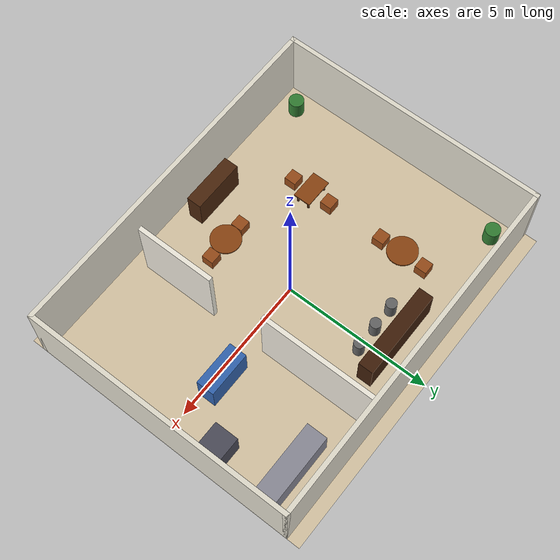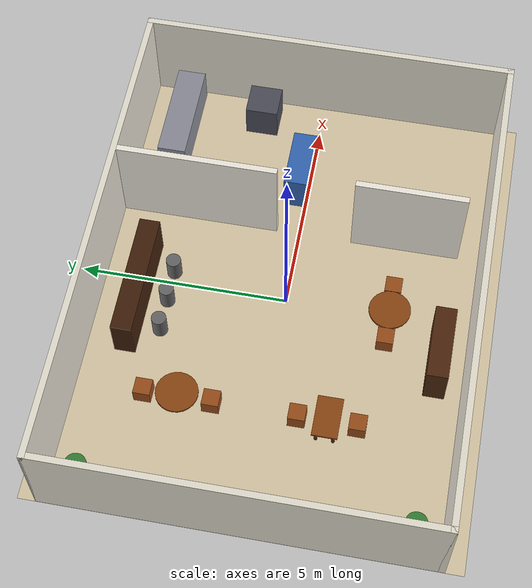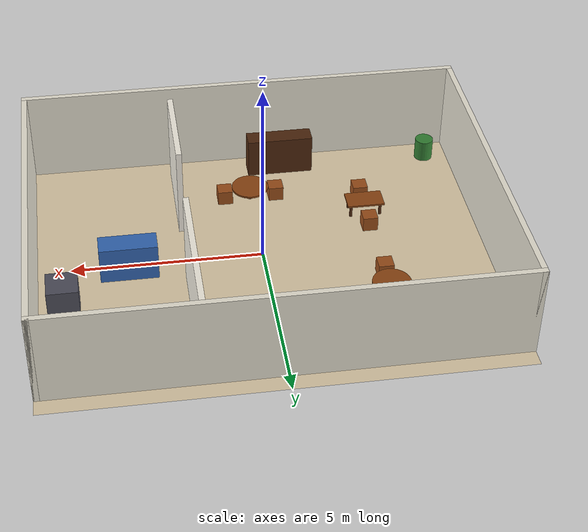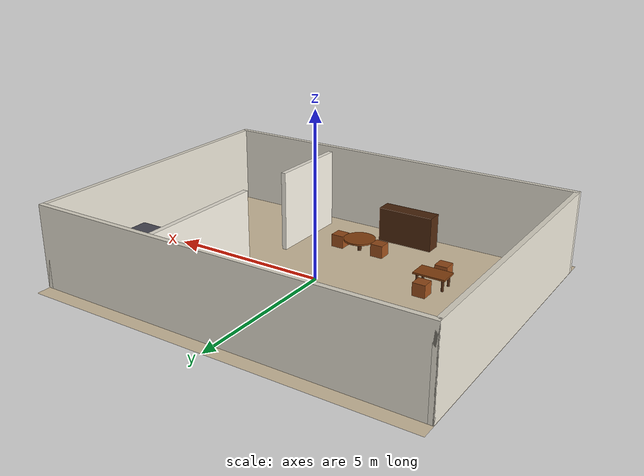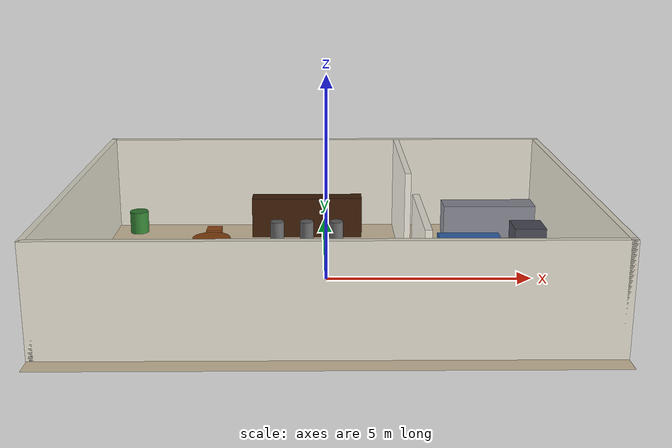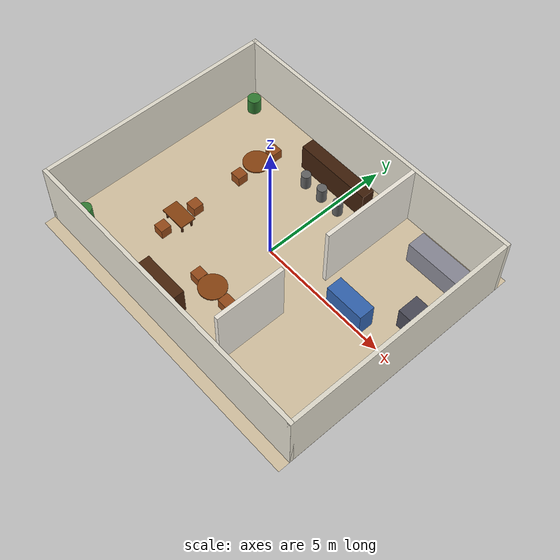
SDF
<?xml version="1.0"?>
<sdf version="1.6">
  <world name="restaurant_world">

    <include>
      <uri>model://ground_plane</uri>
    </include>

    <include>
      <uri>model://sun</uri>
    </include>

    <scene>
      <shadows>false</shadows>
      <ambient>0.6 0.6 0.6 1</ambient>
      <background>0.7 0.8 0.9 1</background>
    </scene>

    <gui fullscreen='0'>
      <camera name='user_camera'>
        <pose frame=''>0.0 0.0 18.0 0 1.5707 0</pose>
        <view_controller>orbit</view_controller>
        <projection_type>perspective</projection_type>
      </camera>
    </gui>

    <physics type="ode">
      <real_time_update_rate>1000.0</real_time_update_rate>
      <max_step_size>0.001</max_step_size>
      <real_time_factor>1</real_time_factor>
      <ode>
        <solver>
          <type>quick</type>
          <iters>150</iters>
          <precon_iters>0</precon_iters>
          <sor>1.4</sor>
          <use_dynamic_moi_rescaling>1</use_dynamic_moi_rescaling>
        </solver>
        <constraints>
          <cfm>0.00001</cfm>
          <erp>0.2</erp>
          <contact_max_correcting_vel>2000.0</contact_max_correcting_vel>
          <contact_surface_layer>0.01</contact_surface_layer>
        </constraints>
      </ode>
    </physics>

    <!-- ==================== FLOOR ==================== -->
    <model name="restaurant_floor">
      <static>true</static>
      <pose>0 0 0.001 0 0 0</pose>
      <link name="link">
        <visual name="visual">
          <geometry>
            <plane><normal>0 0 1</normal><size>12 10</size></plane>
          </geometry>
          <material>
            <ambient>0.85 0.78 0.65 1</ambient>
            <diffuse>0.85 0.78 0.65 1</diffuse>
          </material>
        </visual>
      </link>
    </model>

    <!-- ==================== OUTER WALLS ==================== -->
    <!-- North wall (y=4.5) -->
    <model name="wall_north">
      <static>true</static>
      <pose>0 4.5 0 0 0 0</pose>
      <link name="link">
        <pose>0 0 1.25 0 0 0</pose>
        <collision name="collision">
          <geometry><box><size>12 0.15 2.5</size></box></geometry>
        </collision>
        <visual name="visual">
          <geometry><box><size>12 0.15 2.5</size></box></geometry>
          <material>
            <ambient>0.9 0.88 0.82 1</ambient>
            <diffuse>0.9 0.88 0.82 1</diffuse>
          </material>
        </visual>
      </link>
    </model>

    <!-- South wall (y=-4.5) -->
    <model name="wall_south">
      <static>true</static>
      <pose>0 -4.5 0 0 0 0</pose>
      <link name="link">
        <pose>0 0 1.25 0 0 0</pose>
        <collision name="collision">
          <geometry><box><size>12 0.15 2.5</size></box></geometry>
        </collision>
        <visual name="visual">
          <geometry><box><size>12 0.15 2.5</size></box></geometry>
          <material>
            <ambient>0.9 0.88 0.82 1</ambient>
            <diffuse>0.9 0.88 0.82 1</diffuse>
          </material>
        </visual>
      </link>
    </model>

    <!-- East wall (x=5.925) -->
    <model name="wall_east">
      <static>true</static>
      <pose>5.925 0 0 0 0 0</pose>
      <link name="link">
        <pose>0 0 1.25 0 0 0</pose>
        <collision name="collision">
          <geometry><box><size>0.15 9.15 2.5</size></box></geometry>
        </collision>
        <visual name="visual">
          <geometry><box><size>0.15 9.15 2.5</size></box></geometry>
          <material>
            <ambient>0.9 0.88 0.82 1</ambient>
            <diffuse>0.9 0.88 0.82 1</diffuse>
          </material>
        </visual>
      </link>
    </model>

    <!-- West wall (x=-5.925) -->
    <model name="wall_west">
      <static>true</static>
      <pose>-5.925 0 0 0 0 0</pose>
      <link name="link">
        <pose>0 0 1.25 0 0 0</pose>
        <collision name="collision">
          <geometry><box><size>0.15 9.15 2.5</size></box></geometry>
        </collision>
        <visual name="visual">
          <geometry><box><size>0.15 9.15 2.5</size></box></geometry>
          <material>
            <ambient>0.9 0.88 0.82 1</ambient>
            <diffuse>0.9 0.88 0.82 1</diffuse>
          </material>
        </visual>
      </link>
    </model>

    <!-- ==================== KITCHEN PARTITION WALL ==================== -->
    <!-- Kitchen is in the right side (x > 2.0), separated by a partition wall -->
    <!-- Upper partition (above doorway) -->
    <model name="kitchen_wall_upper">
      <static>true</static>
      <pose>2.0 2.5 0 0 0 0</pose>
      <link name="link">
        <pose>0 0 1.25 0 0 0</pose>
        <collision name="collision">
          <geometry><box><size>0.15 3.85 2.5</size></box></geometry>
        </collision>
        <visual name="visual">
          <geometry><box><size>0.15 3.85 2.5</size></box></geometry>
          <material>
            <ambient>0.95 0.93 0.88 1</ambient>
            <diffuse>0.95 0.93 0.88 1</diffuse>
          </material>
        </visual>
      </link>
    </model>

    <!-- Lower partition (below doorway) — doorway at y = -0.3 to y = 0.8 -->
    <model name="kitchen_wall_lower">
      <static>true</static>
      <pose>2.0 -2.6 0 0 0 0</pose>
      <link name="link">
        <pose>0 0 1.25 0 0 0</pose>
        <collision name="collision">
          <geometry><box><size>0.15 2.65 2.5</size></box></geometry>
        </collision>
        <visual name="visual">
          <geometry><box><size>0.15 2.65 2.5</size></box></geometry>
          <material>
            <ambient>0.95 0.93 0.88 1</ambient>
            <diffuse>0.95 0.93 0.88 1</diffuse>
          </material>
        </visual>
      </link>
    </model>

    <!-- ==================== KITCHEN AREA (right side x=2..6) ==================== -->
    <!-- Kitchen counter (along back wall) -->
    <model name="kitchen_counter">
      <static>true</static>
      <pose>4.5 3.5 0 0 0 0</pose>
      <link name="link">
        <pose>0 0 0.45 0 0 0</pose>
        <collision name="collision">
          <geometry><box><size>2.5 0.7 0.9</size></box></geometry>
        </collision>
        <visual name="visual">
          <geometry><box><size>2.5 0.7 0.9</size></box></geometry>
          <material>
            <ambient>0.55 0.55 0.6 1</ambient>
            <diffuse>0.55 0.55 0.6 1</diffuse>
          </material>
        </visual>
      </link>
    </model>

    <!-- Kitchen stove -->
    <model name="kitchen_stove">
      <static>true</static>
      <pose>5.2 1.5 0 0 0 0</pose>
      <link name="link">
        <pose>0 0 0.45 0 0 0</pose>
        <collision name="collision">
          <geometry><box><size>0.8 0.8 0.9</size></box></geometry>
        </collision>
        <visual name="visual">
          <geometry><box><size>0.8 0.8 0.9</size></box></geometry>
          <material>
            <ambient>0.3 0.3 0.35 1</ambient>
            <diffuse>0.3 0.3 0.35 1</diffuse>
          </material>
        </visual>
      </link>
    </model>

    <!-- Kitchen food pickup counter (near partition doorway) -->
    <model name="kitchen_pickup">
      <static>true</static>
      <pose>3.5 0.25 0 0 0 0</pose>
      <link name="link">
        <pose>0 0 0.5 0 0 0</pose>
        <collision name="collision">
          <geometry><box><size>1.5 0.6 1.0</size></box></geometry>
        </collision>
        <visual name="visual">
          <geometry><box><size>1.5 0.6 1.0</size></box></geometry>
          <material>
            <ambient>0.2 0.4 0.7 1</ambient>
            <diffuse>0.2 0.4 0.7 1</diffuse>
          </material>
        </visual>
      </link>
    </model>

    <!-- ==================== DINING TABLE 1 (front-left) ==================== -->
    <model name="table_1">
      <static>true</static>
      <pose>-3.0 2.0 0 0 0 0</pose>
      <link name="table_top">
        <pose>0 0 0.375 0 0 0</pose>
        <collision name="collision">
          <geometry><cylinder><radius>0.5</radius><length>0.05</length></cylinder></geometry>
        </collision>
        <visual name="visual">
          <geometry><cylinder><radius>0.5</radius><length>0.05</length></cylinder></geometry>
          <material><ambient>0.55 0.27 0.07 1</ambient><diffuse>0.55 0.27 0.07 1</diffuse></material>
        </visual>
      </link>
      <link name="table_leg">
        <pose>0 0 0.175 0 0 0</pose>
        <collision name="collision">
          <geometry><cylinder><radius>0.06</radius><length>0.35</length></cylinder></geometry>
        </collision>
        <visual name="visual">
          <geometry><cylinder><radius>0.06</radius><length>0.35</length></cylinder></geometry>
          <material><ambient>0.3 0.15 0.05 1</ambient><diffuse>0.3 0.15 0.05 1</diffuse></material>
        </visual>
      </link>
    </model>
    <model name="chair_1a">
      <static>true</static>
      <pose>-3.0 2.8 0 0 0 0</pose>
      <link name="link"><pose>0 0 0.2 0 0 0</pose>
        <collision name="c"><geometry><box><size>0.4 0.4 0.4</size></box></geometry></collision>
        <visual name="v"><geometry><box><size>0.4 0.4 0.4</size></box></geometry>
          <material><ambient>0.6 0.3 0.1 1</ambient><diffuse>0.6 0.3 0.1 1</diffuse></material></visual>
      </link>
    </model>
    <model name="chair_1b">
      <static>true</static>
      <pose>-3.0 1.2 0 0 0 0</pose>
      <link name="link"><pose>0 0 0.2 0 0 0</pose>
        <collision name="c"><geometry><box><size>0.4 0.4 0.4</size></box></geometry></collision>
        <visual name="v"><geometry><box><size>0.4 0.4 0.4</size></box></geometry>
          <material><ambient>0.6 0.3 0.1 1</ambient><diffuse>0.6 0.3 0.1 1</diffuse></material></visual>
      </link>
    </model>

    <!-- ==================== DINING TABLE 2 (left-center) ==================== -->
    <model name="table_2">
      <static>true</static>
      <pose>-3.0 -1.5 0 0 0 0</pose>
      <link name="table_top">
        <pose>0 0 0.375 0 0 0</pose>
        <collision name="collision">
          <geometry><box><size>1.0 0.6 0.05</size></box></geometry>
        </collision>
        <visual name="visual">
          <geometry><box><size>1.0 0.6 0.05</size></box></geometry>
          <material><ambient>0.55 0.27 0.07 1</ambient><diffuse>0.55 0.27 0.07 1</diffuse></material>
        </visual>
      </link>
      <link name="leg1"><pose>-0.4 -0.2 0.175 0 0 0</pose>
        <collision name="c"><geometry><cylinder><radius>0.04</radius><length>0.35</length></cylinder></geometry></collision>
        <visual name="v"><geometry><cylinder><radius>0.04</radius><length>0.35</length></cylinder></geometry>
          <material><ambient>0.3 0.15 0.05 1</ambient><diffuse>0.3 0.15 0.05 1</diffuse></material></visual>
      </link>
      <link name="leg2"><pose>0.4 -0.2 0.175 0 0 0</pose>
        <collision name="c"><geometry><cylinder><radius>0.04</radius><length>0.35</length></cylinder></geometry></collision>
        <visual name="v"><geometry><cylinder><radius>0.04</radius><length>0.35</length></cylinder></geometry>
          <material><ambient>0.3 0.15 0.05 1</ambient><diffuse>0.3 0.15 0.05 1</diffuse></material></visual>
      </link>
      <link name="leg3"><pose>-0.4 0.2 0.175 0 0 0</pose>
        <collision name="c"><geometry><cylinder><radius>0.04</radius><length>0.35</length></cylinder></geometry></collision>
        <visual name="v"><geometry><cylinder><radius>0.04</radius><length>0.35</length></cylinder></geometry>
          <material><ambient>0.3 0.15 0.05 1</ambient><diffuse>0.3 0.15 0.05 1</diffuse></material></visual>
      </link>
      <link name="leg4"><pose>0.4 0.2 0.175 0 0 0</pose>
        <collision name="c"><geometry><cylinder><radius>0.04</radius><length>0.35</length></cylinder></geometry></collision>
        <visual name="v"><geometry><cylinder><radius>0.04</radius><length>0.35</length></cylinder></geometry>
          <material><ambient>0.3 0.15 0.05 1</ambient><diffuse>0.3 0.15 0.05 1</diffuse></material></visual>
      </link>
    </model>
    <model name="chair_2a">
      <static>true</static>
      <pose>-3.0 -0.8 0 0 0 0</pose>
      <link name="link"><pose>0 0 0.2 0 0 0</pose>
        <collision name="c"><geometry><box><size>0.4 0.4 0.4</size></box></geometry></collision>
        <visual name="v"><geometry><box><size>0.4 0.4 0.4</size></box></geometry>
          <material><ambient>0.6 0.3 0.1 1</ambient><diffuse>0.6 0.3 0.1 1</diffuse></material></visual>
      </link>
    </model>
    <model name="chair_2b">
      <static>true</static>
      <pose>-3.0 -2.2 0 0 0 0</pose>
      <link name="link"><pose>0 0 0.2 0 0 0</pose>
        <collision name="c"><geometry><box><size>0.4 0.4 0.4</size></box></geometry></collision>
        <visual name="v"><geometry><box><size>0.4 0.4 0.4</size></box></geometry>
          <material><ambient>0.6 0.3 0.1 1</ambient><diffuse>0.6 0.3 0.1 1</diffuse></material></visual>
      </link>
    </model>

    <!-- ==================== DINING TABLE 3 (center area) ==================== -->
    <model name="table_3">
      <static>true</static>
      <pose>0.0 -2.5 0 0 0 0</pose>
      <link name="table_top">
        <pose>0 0 0.375 0 0 0</pose>
        <collision name="collision">
          <geometry><cylinder><radius>0.5</radius><length>0.05</length></cylinder></geometry>
        </collision>
        <visual name="visual">
          <geometry><cylinder><radius>0.5</radius><length>0.05</length></cylinder></geometry>
          <material><ambient>0.55 0.27 0.07 1</ambient><diffuse>0.55 0.27 0.07 1</diffuse></material>
        </visual>
      </link>
      <link name="table_leg">
        <pose>0 0 0.175 0 0 0</pose>
        <collision name="collision">
          <geometry><cylinder><radius>0.06</radius><length>0.35</length></cylinder></geometry>
        </collision>
        <visual name="visual">
          <geometry><cylinder><radius>0.06</radius><length>0.35</length></cylinder></geometry>
          <material><ambient>0.3 0.15 0.05 1</ambient><diffuse>0.3 0.15 0.05 1</diffuse></material>
        </visual>
      </link>
    </model>
    <model name="chair_3a">
      <static>true</static>
      <pose>0.7 -2.5 0 0 0 0</pose>
      <link name="link"><pose>0 0 0.2 0 0 0</pose>
        <collision name="c"><geometry><box><size>0.4 0.4 0.4</size></box></geometry></collision>
        <visual name="v"><geometry><box><size>0.4 0.4 0.4</size></box></geometry>
          <material><ambient>0.6 0.3 0.1 1</ambient><diffuse>0.6 0.3 0.1 1</diffuse></material></visual>
      </link>
    </model>
    <model name="chair_3b">
      <static>true</static>
      <pose>-0.7 -2.5 0 0 0 0</pose>
      <link name="link"><pose>0 0 0.2 0 0 0</pose>
        <collision name="c"><geometry><box><size>0.4 0.4 0.4</size></box></geometry></collision>
        <visual name="v"><geometry><box><size>0.4 0.4 0.4</size></box></geometry>
          <material><ambient>0.6 0.3 0.1 1</ambient><diffuse>0.6 0.3 0.1 1</diffuse></material></visual>
      </link>
    </model>

    <!-- ==================== RECEPTION / HOME ==================== -->
    <model name="reception_counter">
      <static>true</static>
      <pose>-1.0 -3.8 0 0 0 0</pose>
      <link name="link">
        <pose>0 0 0.55 0 0 0</pose>
        <collision name="collision">
          <geometry><box><size>1.8 0.5 1.1</size></box></geometry>
        </collision>
        <visual name="visual">
          <geometry><box><size>1.8 0.5 1.1</size></box></geometry>
          <material><ambient>0.3 0.15 0.05 1</ambient><diffuse>0.3 0.15 0.05 1</diffuse></material>
        </visual>
      </link>
    </model>

    <!-- ==================== BAR / DRINKS COUNTER ==================== -->
    <model name="bar_counter">
      <static>true</static>
      <pose>-0.5 3.5 0 0 0 0</pose>
      <link name="link">
        <pose>0 0 0.55 0 0 0</pose>
        <collision name="collision">
          <geometry><box><size>3.0 0.5 1.1</size></box></geometry>
        </collision>
        <visual name="visual">
          <geometry><box><size>3.0 0.5 1.1</size></box></geometry>
          <material><ambient>0.25 0.12 0.04 1</ambient><diffuse>0.25 0.12 0.04 1</diffuse></material>
        </visual>
      </link>
    </model>
    <model name="bar_stool_1">
      <static>true</static>
      <pose>-1.3 2.8 0 0 0 0</pose>
      <link name="link"><pose>0 0 0.3 0 0 0</pose>
        <collision name="c"><geometry><cylinder><radius>0.18</radius><length>0.6</length></cylinder></geometry></collision>
        <visual name="v"><geometry><cylinder><radius>0.18</radius><length>0.6</length></cylinder></geometry>
          <material><ambient>0.4 0.4 0.4 1</ambient><diffuse>0.4 0.4 0.4 1</diffuse></material></visual>
      </link>
    </model>
    <model name="bar_stool_2">
      <static>true</static>
      <pose>-0.5 2.8 0 0 0 0</pose>
      <link name="link"><pose>0 0 0.3 0 0 0</pose>
        <collision name="c"><geometry><cylinder><radius>0.18</radius><length>0.6</length></cylinder></geometry></collision>
        <visual name="v"><geometry><cylinder><radius>0.18</radius><length>0.6</length></cylinder></geometry>
          <material><ambient>0.4 0.4 0.4 1</ambient><diffuse>0.4 0.4 0.4 1</diffuse></material></visual>
      </link>
    </model>
    <model name="bar_stool_3">
      <static>true</static>
      <pose>0.3 2.8 0 0 0 0</pose>
      <link name="link"><pose>0 0 0.3 0 0 0</pose>
        <collision name="c"><geometry><cylinder><radius>0.18</radius><length>0.6</length></cylinder></geometry></collision>
        <visual name="v"><geometry><cylinder><radius>0.18</radius><length>0.6</length></cylinder></geometry>
          <material><ambient>0.4 0.4 0.4 1</ambient><diffuse>0.4 0.4 0.4 1</diffuse></material></visual>
      </link>
    </model>

    <!-- ==================== DECORATIVE PLANTERS ==================== -->
    <model name="planter_1">
      <static>true</static>
      <pose>-5.2 3.8 0 0 0 0</pose>
      <link name="link"><pose>0 0 0.3 0 0 0</pose>
        <collision name="c"><geometry><cylinder><radius>0.25</radius><length>0.6</length></cylinder></geometry></collision>
        <visual name="v"><geometry><cylinder><radius>0.25</radius><length>0.6</length></cylinder></geometry>
          <material><ambient>0.2 0.5 0.2 1</ambient><diffuse>0.2 0.5 0.2 1</diffuse></material></visual>
      </link>
    </model>
    <model name="planter_2">
      <static>true</static>
      <pose>-5.2 -3.8 0 0 0 0</pose>
      <link name="link"><pose>0 0 0.3 0 0 0</pose>
        <collision name="c"><geometry><cylinder><radius>0.25</radius><length>0.6</length></cylinder></geometry></collision>
        <visual name="v"><geometry><cylinder><radius>0.25</radius><length>0.6</length></cylinder></geometry>
          <material><ambient>0.2 0.5 0.2 1</ambient><diffuse>0.2 0.5 0.2 1</diffuse></material></visual>
      </link>
    </model>

  </world>
</sdf>
